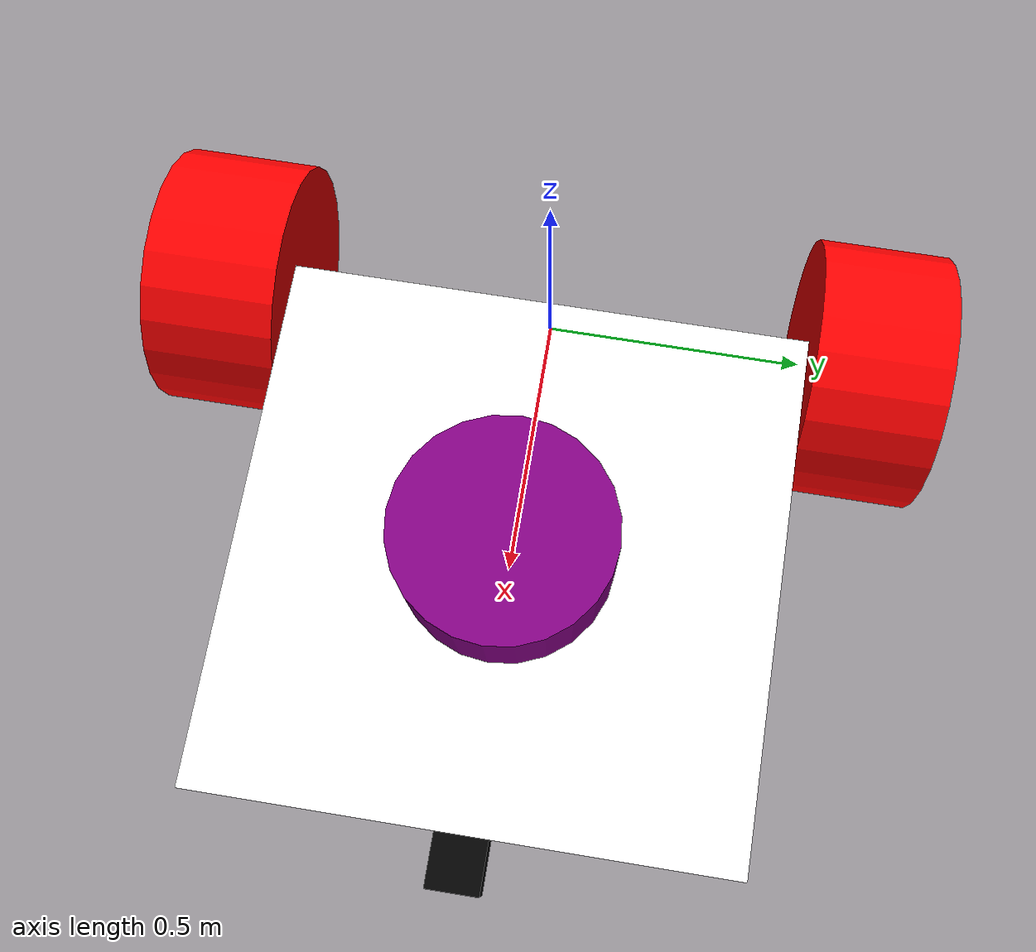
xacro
<?xml version="1.0"?>
<robot xmlns:xacro="http://www.ros.org/wiki/xacro" name="robot">
    <!-- Constants -->
    <xacro:include filename="$(find simple_bot)/description/const.xacro"/>
    <xacro:include filename="$(find simple_bot)/description/materials.xacro"/>
    <xacro:include filename="$(find simple_bot)/description/gazebo_plugins.xacro"/>
    <xacro:include filename="$(find simple_bot)/description/gazebo.xacro"/> <!-- Gazebo specific tags such as friction-->

    <!-- TODO:
    - Restructure link structure s.t. has chassis. Follow  https://www.youtube.com/watch?v=BcjHyhV0kIs
    -->
    <link name="base_link"/>
    <joint name="base_2_chassis" type="fixed">
        <origin xyz="${chassis_length/2} 0.0 0.0" rpy="0 0 0"/>
        <parent link="base_link"/>
        <child link="chassis_link"/>
    </joint>

    <link name="chassis_link">
        <visual>
            <geometry>
                <box size="${chassis_length} ${chassis_width} ${chassis_height}"/>
            </geometry>
            <material name="white"/>
        </visual>

        <collision>
            <geometry>
                <box size="${chassis_length} ${chassis_width} ${chassis_height}"/>
            </geometry>
        </collision>

        <inertial>
            <mass value="${chassis_mass}"/>
            <inertia ixx="${1/12*chassis_mass*(chassis_width*chassis_width + chassis_height*chassis_height)}"
                        ixy="0.0" ixz="0.0" iyy="${1/12*chassis_mass*(chassis_length*chassis_length + chassis_height*chassis_height)}"
                        iyz="0.0" izz="${1/12*chassis_mass*(chassis_width*chassis_width + chassis_length*chassis_length)}"/>
        </inertial>

        <gazebo reference="chassis">
            <material>Gazebo/White</material>
        </gazebo>
    </link>

    <!-- Left Wheel -->
    <joint name="chassis_link_2_lwheel" type="continuous">
        <origin rpy = "${PI/2} 0 ${PI}" xyz="${-chassis_length/2} ${chassis_width/2 + wheel_thickness/2} 0"/>
        <parent link="chassis_link"/>
        <child link="lwheel"/>
        <axis xyz="0 0 1"/>
        <dynamics damping="0.1" friction="0.1"/>
        <limits effort="100" velocity="10.0"/>
    </joint>

    <link name="lwheel">
        <visual>
            <geometry>
                <cylinder length="${wheel_thickness}" radius="${wheel_radius}"/>
            </geometry>
            <material name="red"/>
        </visual>

        <collision>
            <geometry>
                <cylinder length="${wheel_thickness}" radius="${wheel_radius}"/>
            </geometry>
        </collision>

        <inertial>
            <mass value="${left_wheel_mass}"/>
            <inertia ixx="${1/12*left_wheel_mass*(3*wheel_radius*wheel_radius + wheel_thickness*wheel_thickness)}" ixy="0"
                        ixz="0.0" iyy="${1/12*left_wheel_mass*(3*wheel_radius*wheel_radius + wheel_thickness*wheel_thickness)}" iyz="0.0"
                        izz="${1/2*left_wheel_mass*wheel_radius*wheel_radius}"/>
        </inertial>

        <gazebo reference="chassis">
            <material>Gazebo/Red</material>
        </gazebo>
    </link>

    <!-- Right Wheel -->
     <!-- TODO: Ideally want yaw to be 0 so that in HW->SW more symmetricalfor wheel joints-->
    <joint name="chassis_link_2_rwheel" type="continuous">
        <origin rpy = "${PI/2} 0 ${PI}" xyz="${-chassis_length/2} ${-1*(chassis_width/2 + wheel_thickness/2)} 0"/>
        <parent link="chassis_link"/>
        <child link="rwheel"/>
        <axis xyz="0 0 1"/>
        <dynamics damping="0.1" friction="0.1"/>
        <limits effort="100" velocity="10.0"/>
    </joint>

    <link name="rwheel">
        <visual>
            <geometry>
                <cylinder length="${wheel_thickness}" radius="${wheel_radius}"/>
            </geometry>
            <material name="red"/>
        </visual>

        <collision>
            <geometry>
                <cylinder length="${wheel_thickness}" radius="${wheel_radius}"/>
            </geometry>
        </collision>

        <inertial>
            <mass value="${right_wheel_mass}"/>
            <inertia ixx="${1/12*right_wheel_mass*(3*wheel_radius*wheel_radius + wheel_thickness*wheel_thickness)}" ixy="0"
                        ixz="0.0" iyy="${1/12*right_wheel_mass*(3*wheel_radius*wheel_radius + wheel_thickness*wheel_thickness)}" iyz="0.0"
                        izz="${1/2*right_wheel_mass*wheel_radius*wheel_radius}"/>
        </inertial>

        <gazebo reference="chassis">
            <material>Gazebo/Red</material>
        </gazebo>
    </link>

    <!-- Passive Front Caster Wheel that is frictionless-->
     <joint name="chassis_2_caster_wheel" type="fixed">
        <origin rpy="0 0 0" xyz="${chassis_length/2 - caster_wheel_radius} 0 ${-chassis_height/2}"/>
        <parent link="chassis_link"/>
        <child link="caster_wheel"/>
     </joint>
     <gazebo reference="caster_wheel">
        <disableFixedJointLumping>true</disableFixedJointLumping>
     </gazebo>

    <link name="caster_wheel">
        <visual>
            <origin xyz="0 0 0" rpy="0 0 0"/>
            <geometry>
                <sphere radius="${caster_wheel_radius}"/>
            </geometry>
            <gazebo reference="caster_wheel">
                <material>Gazebo/White</material>
            </gazebo>
            <material name="blue"/>
        </visual>

        <collision>
            <origin xyz="0 0 0" rpy="0 0 0"/>
            <geometry>
                <sphere radius="${caster_wheel_radius}"/>
            </geometry>
        </collision>

        <inertial>
            <mass value="${caster_wheel_mass}"/>
            <inertia ixx="${2/5*caster_wheel_mass*caster_wheel_radius*caster_wheel_radius}"
                        ixy="0.0" ixz="0.0" iyy="${2/5*caster_wheel_mass*caster_wheel_radius*caster_wheel_radius}"
                        iyz="0.0" izz="${2/5*caster_wheel_mass*caster_wheel_radius*caster_wheel_radius}" />
        </inertial>
    </link>

    <joint name="imu_joint" type="fixed">
        <parent link="chassis_link"/>
        <child link="imu_link"/>
    </joint>
    <gazebo reference="imu_link"> <!-- TODO: Remove gazebo reference from main xacro files when transitioning to different simulators-->
        <disableFixedJointLumping>true</disableFixedJointLumping>
    </gazebo>
    <link name="imu_link"/>

    <joint name="lidar_joint" type="fixed">
        <origin xyz="0 0 ${chassis_height/2 + lidar_height/2}"/>
        <parent link="chassis_link"/>
        <child link="lidar_link"/>
    </joint>
    <gazebo reference="lidar_link"> <!-- TODO: Remove gazebo reference from main xacro files when transitioning to different simulators-->
        <disableFixedJointLumping>true</disableFixedJointLumping>
    </gazebo>
    <link name="lidar_link">
        <visual>
            <geometry>
                <cylinder length="${lidar_height}" radius="${lidar_radius}"/>
            </geometry>
            <material name="purple"/>
            <gazebo reference="caster_wheel">
                <material>Gazebo/White</material>
            </gazebo>
        </visual>
        <collision>
            <geometry>
                <cylinder length="${lidar_height}" radius="${lidar_radius}"/>
            </geometry>
        </collision>
        <inertial>
            <mass value="${lidar_mass}"/>
            <inertia ixx="${1/12*lidar_mass*(3*lidar_radius*lidar_radius + lidar_height*lidar_height)}" ixy="0"
                        ixz="0.0" iyy="${1/12*lidar_mass*(3*lidar_radius*lidar_radius + lidar_height*lidar_height)}" iyz="0.0"
                        izz="${1/2*lidar_mass*lidar_radius*lidar_radius}"/>
        </inertial>
    </link>

    <!-- TODO: Do Camera later-->
    <joint name="camera_joint" type="fixed">
        <origin xyz="${(chassis_length + camera_depth)/2} 0 0"/>
        <parent link="chassis_link"/>
        <child link="camera_link"/>
    </joint>
    <gazebo reference="camera_link"> <!-- TODO: Remove gazebo reference from main xacro files when transitioning to different simulators-->
        <disableFixedJointLumping>true</disableFixedJointLumping>
    </gazebo>
    <link name="camera_link">
        <visual>
            <geometry>
                <box size="${camera_depth} ${camera_width} ${camera_height}"/>
            </geometry>
            <material name="black"/>
        </visual>

        <collision>
            <geometry>
                <box size="${camera_depth} ${camera_width} ${camera_height}"/>
            </geometry>
        </collision>

        <inertial>
            <mass value="${camera_mass}"/>
            <inertia ixx="${1/12*camera_mass*(camera_width*camera_width + camera_height*camera_height)}"
                        ixy="0.0" ixz="0.0" iyy="${1/12*camera_mass*(camera_depth*camera_depth + camera_height*camera_height)}"
                        iyz="0.0" izz="${1/12*camera_mass*(camera_width*camera_width + camera_depth*camera_depth)}"/>
        </inertial>

        <gazebo reference="chassis">
            <material>Gazebo/Black</material>
        </gazebo>
    </link>

</robot>

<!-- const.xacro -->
<robot xmlns:xacro="http://www.ros.org/wiki/xacro">

    <!-- Constant parameters -->
    <xacro:property name="robot_name" value="diff_bot"/>
    <xacro:property name="PI" value="3.1415926535897931" />
    <xacro:property name="chassis_length" value="1.0"/>
    <xacro:property name="chassis_width" value="1.0"/>
    <xacro:property name="chassis_height" value="0.25"/>
    <xacro:property name="wheel_radius" value="0.25"/>
    <xacro:property name="wheel_thickness" value="0.25"/>
    <xacro:property name="caster_wheel_radius" value="${wheel_radius - chassis_height/2}"/>
    <xacro:property name="chassis_mass" value="1.0"/>
    <xacro:property name="left_wheel_mass" value="0.1"/>
    <xacro:property name="right_wheel_mass" value="0.1"/>
    <xacro:property name="caster_wheel_mass" value="0.1"/>

    <xacro:property name="lidar_height" value="0.2"/>
    <xacro:property name="lidar_radius" value="0.2"/>
    <xacro:property name="lidar_mass" value="0.1"/>

    <xacro:property name="camera_height" value="0.1"/>
    <xacro:property name="camera_width" value="0.1"/>
    <xacro:property name="camera_depth" value="0.1"/>
    <xacro:property name="camera_mass" value="0.2"/>

</robot>

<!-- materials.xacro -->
<robot>
    <material name="black">
        <color rgba="0.0 0.0 0.0 1.0"/>
    </material>

    <material name="white">
        <color rgba="1 1 1 1"/>
    </material>

    <material name="orange">
        <color rgba="1 0.3 0.1 1"/>
    </material>

    <material name="blue">
        <color rgba="0.2 0.2 1 1"/>
    </material>

    <material name="red">
    	<color rgba="1.0 0.0 0.0 1.0" />
    </material>

    <material name="purple">
        <color rgba="0.502 0 0.502 1"/>
    </material>

</robot>
